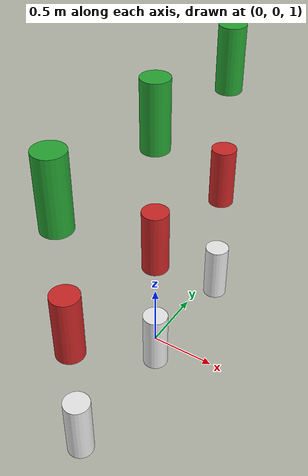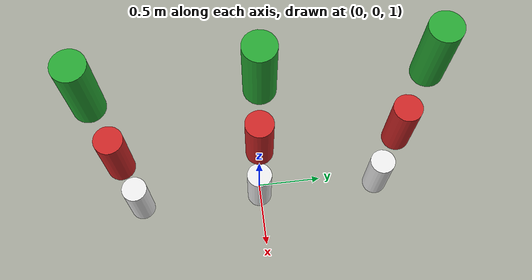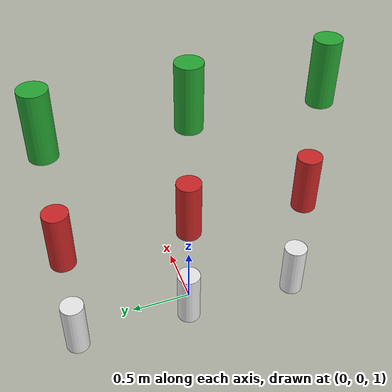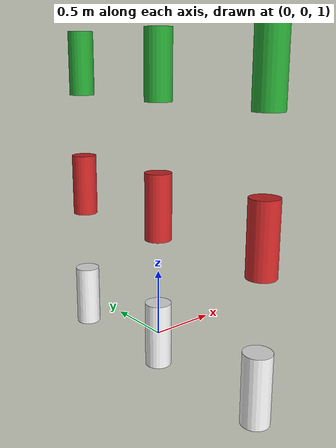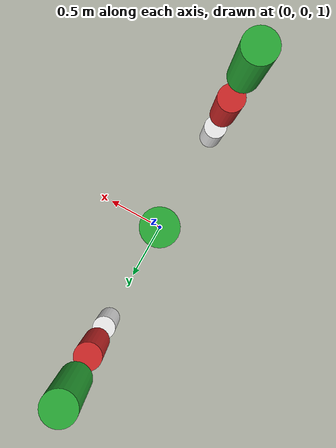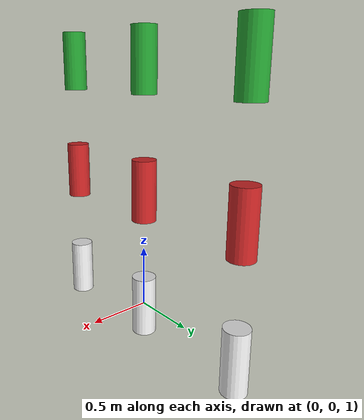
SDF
<?xml version="1.0"?>
<sdf version="1.6">
  <world name='default'>
    <light name='sun' type='directional'>
      <cast_shadows>1</cast_shadows>
      <pose frame=''>0 0 10 0 -0 0</pose>
      <diffuse>0.8 0.8 0.8 1</diffuse>
      <specular>0.1 0.1 0.1 1</specular>
      <attenuation>
        <range>1000</range>
        <constant>0.9</constant>
        <linear>0.01</linear>
        <quadratic>0.001</quadratic>
      </attenuation>
      <direction>-0.5 0.5 -1</direction>
    </light>
    <gravity>0 0 0</gravity>
    <magnetic_field>6e-06 2.3e-05 -4.2e-05</magnetic_field>
    <atmosphere type='adiabatic'/>
    <physics name='default_physics' default='0' type='ode'>
      <max_step_size>0.001</max_step_size>
      <real_time_factor>1</real_time_factor>
      <real_time_update_rate>1000</real_time_update_rate>
    </physics>
    <scene>
      <ambient>0.4 0.4 0.4 1</ambient>
      <background>0.7 0.7 0.7 1</background>
      <shadows>1</shadows>
    </scene>

    <model name='link_velocity_demo'>
      <plugin name='set_link_velocity_plugin' filename='libSetLinkVelocityPlugin.so'/>
      <link name='white_link_0'>
        <pose frame=''>0 1 1 0 0 0</pose>
        <visual name='white_visual_0'>
          <geometry>
            <cylinder>
              <radius>0.1</radius>
              <length>0.5</length>
            </cylinder>
          </geometry>
          <material>
            <lighting>1</lighting>
            <script>
              <uri>file://media/materials/scripts/gazebo.material</uri>
              <name>Gazebo/White</name>
            </script>
          </material>
        </visual>
      </link>
      <link name='white_link_1'>
        <pose frame=''>0 0 1 0 0 0</pose>
        <visual name='white_visual_1'>
          <geometry>
            <cylinder>
              <radius>0.1</radius>
              <length>0.5</length>
            </cylinder>
          </geometry>
          <material>
            <lighting>1</lighting>
            <script>
              <uri>file://media/materials/scripts/gazebo.material</uri>
              <name>Gazebo/White</name>
            </script>
          </material>
        </visual>
      </link>
      <link name='link_0'>
        <pose frame=''>0 -1 1 0 0 0</pose>
        <visual name='white_visual_2'>
          <geometry>
            <cylinder>
              <radius>0.1</radius>
              <length>0.5</length>
            </cylinder>
          </geometry>
          <material>
            <lighting>1</lighting>
            <script>
              <uri>file://media/materials/scripts/gazebo.material</uri>
              <name>Gazebo/White</name>
            </script>
          </material>
        </visual>
      </link>
      <link name='red_link_0'>
        <pose frame=''>0 1 2 0 0 0</pose>
        <visual name='red_visual_1'>
          <geometry>
            <cylinder>
              <radius>0.1</radius>
              <length>0.5</length>
            </cylinder>
          </geometry>
          <material>
            <lighting>1</lighting>
            <script>
              <uri>file://media/materials/scripts/gazebo.material</uri>
              <name>Gazebo/Red</name>
            </script>
          </material>
        </visual>
      </link>
      <link name='red_link_1'>
        <pose frame=''>0 0 2 0 0 0</pose>
        <visual name='red_visual_1'>
          <geometry>
            <cylinder>
              <radius>0.1</radius>
              <length>0.5</length>
            </cylinder>
          </geometry>
          <material>
            <lighting>1</lighting>
            <script>
              <uri>file://media/materials/scripts/gazebo.material</uri>
              <name>Gazebo/Red</name>
            </script>
          </material>
        </visual>
      </link>
      <link name='red_link_2'>
        <pose frame=''>0 -1 2 0 0 0</pose>
        <visual name='red_visual_2'>
          <geometry>
            <cylinder>
              <radius>0.1</radius>
              <length>0.5</length>
            </cylinder>
          </geometry>
          <material>
            <lighting>1</lighting>
            <script>
              <uri>file://media/materials/scripts/gazebo.material</uri>
              <name>Gazebo/Red</name>
            </script>
          </material>
        </visual>
      </link>
      <link name='green_link_0'>
        <pose frame=''>0 1 3 0 0 0</pose>
        <visual name='green_visual_0'>
          <geometry>
            <cylinder>
              <radius>0.1</radius>
              <length>0.5</length>
            </cylinder>
          </geometry>
          <material>
            <lighting>1</lighting>
            <script>
              <uri>file://media/materials/scripts/gazebo.material</uri>
              <name>Gazebo/Green</name>
            </script>
          </material>
        </visual>
      </link>
      <link name='green_link_1'>
        <pose frame=''>0 0 3 0 0 0</pose>
        <visual name='green_visual_1'>
          <geometry>
            <cylinder>
              <radius>0.1</radius>
              <length>0.5</length>
            </cylinder>
          </geometry>
          <material>
            <lighting>1</lighting>
            <script>
              <uri>file://media/materials/scripts/gazebo.material</uri>
              <name>Gazebo/Green</name>
            </script>
          </material>
        </visual>
      </link>
      <link name='green_link_2'>
        <pose frame=''>0 -1 3 0 0 0</pose>
        <visual name='green_visual_2'>
          <geometry>
            <cylinder>
              <radius>0.1</radius>
              <length>0.5</length>
            </cylinder>
          </geometry>
          <material>
            <lighting>1</lighting>
            <script>
              <uri>file://media/materials/scripts/gazebo.material</uri>
              <name>Gazebo/Green</name>
            </script>
          </material>
        </visual>
      </link>

    </model>

    <gui fullscreen='0'>
      <camera name='user_camera'>
        <pose frame=''>-10 0 3 0 0 0</pose>
        <view_controller>orbit</view_controller>
        <projection_type>perspective</projection_type>
      </camera>
    </gui>
  </world>

</sdf>
